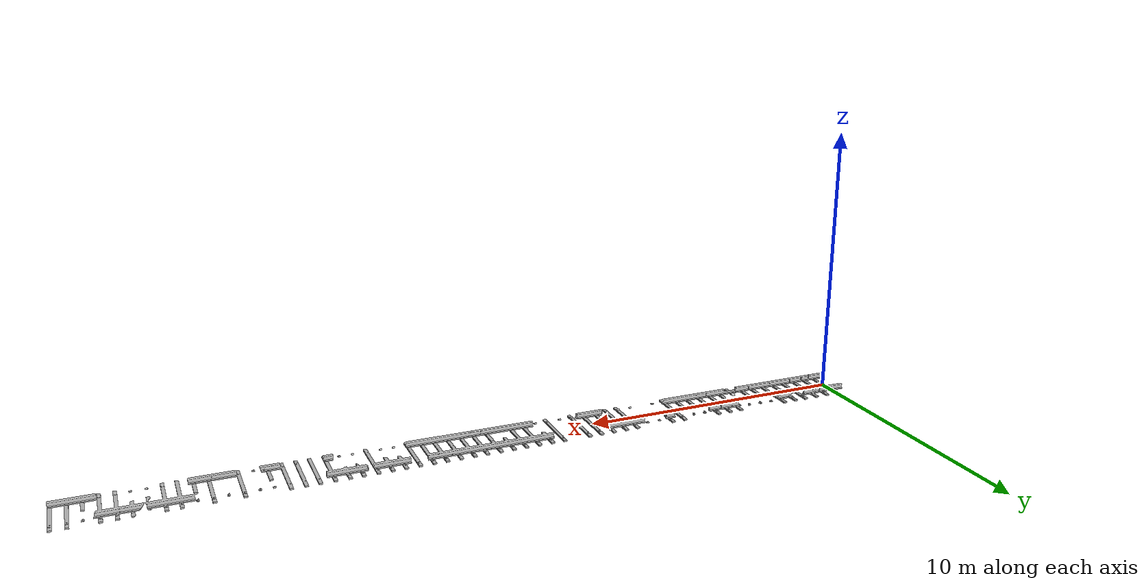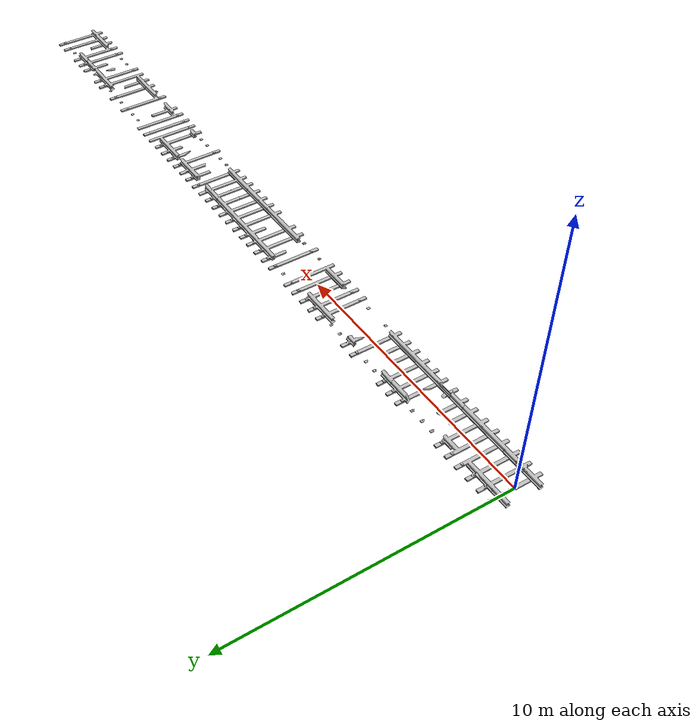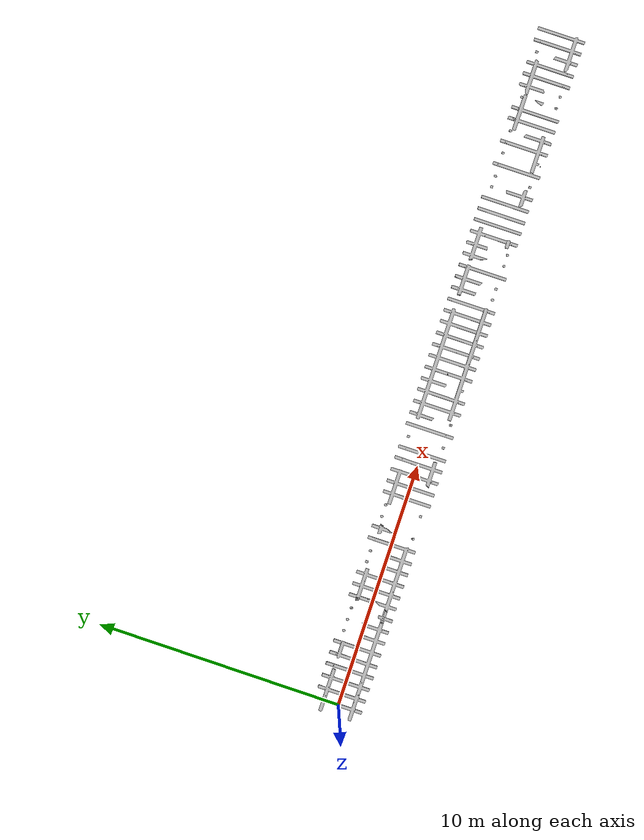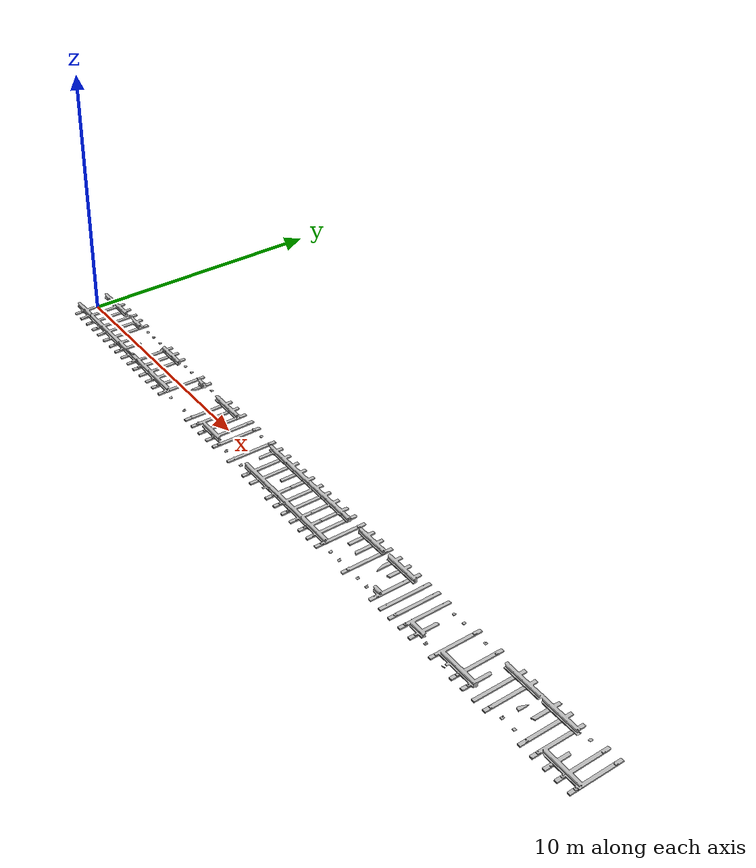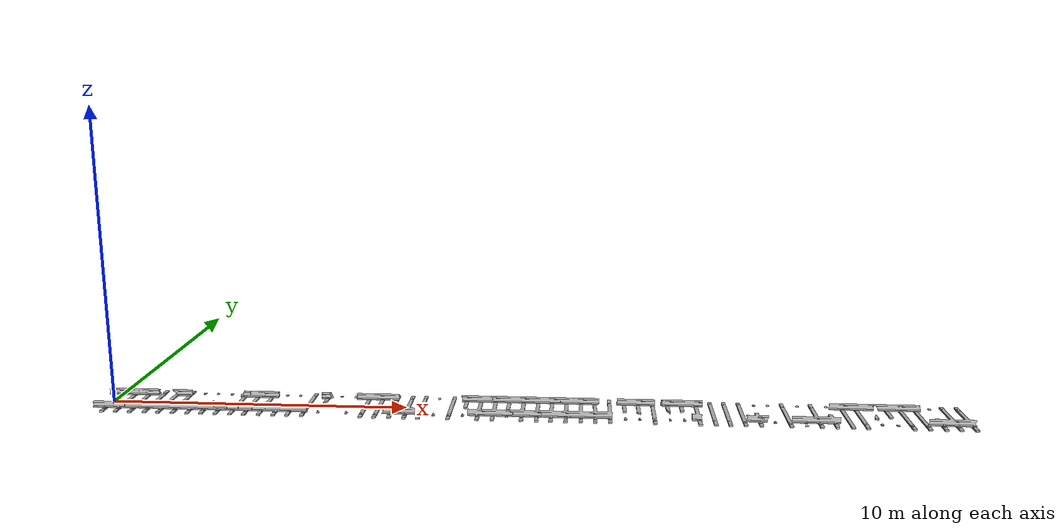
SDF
<?xml version="1.0" ?>
<sdf version="1.6">
  <model name="crashing_rails2">
    <static>true</static>
    <link name="link">
      <visual name="visual">
        <geometry>
          <mesh>
            <uri>model://crashing_rails2/crashing_rails2.obj</uri>
            <scale>1 1 1</scale>
          </mesh>
        </geometry>
      </visual>
      <collision name="collision">
        <geometry>
          <mesh>
            <uri>model://crashing_rails2/crashing_rails2.obj</uri>
          </mesh>
        </geometry>
        <surface>
          <friction>
            <ode>
              <mu>1</mu>
              <mu2>0.5</mu2>
            </ode>
          </friction>
        </surface>
      </collision>
    </link>
  </model>
</sdf>
